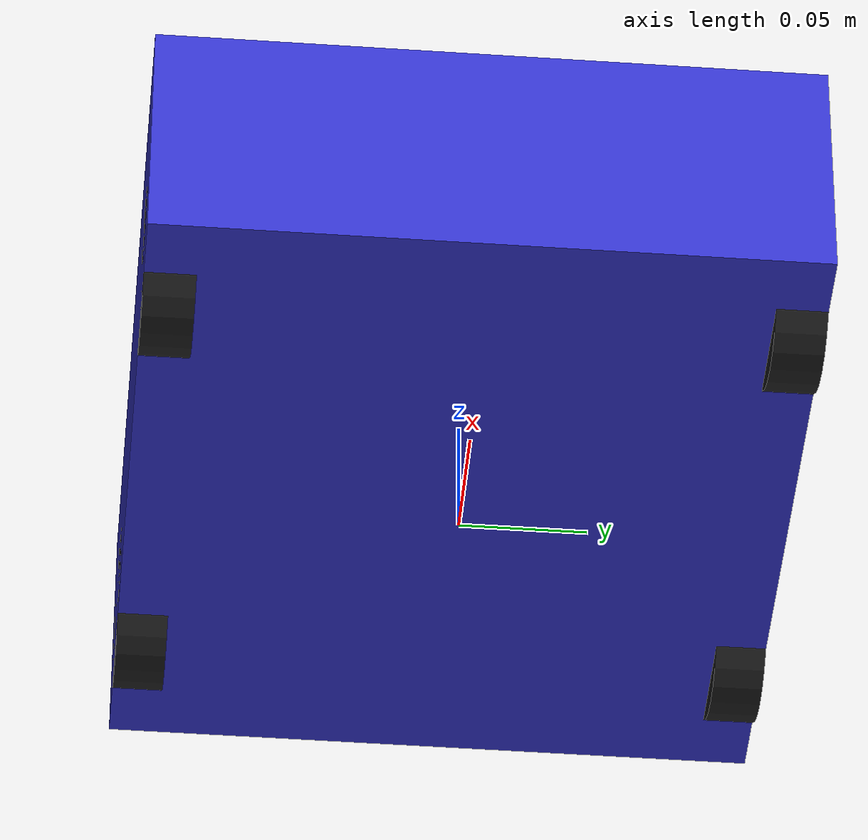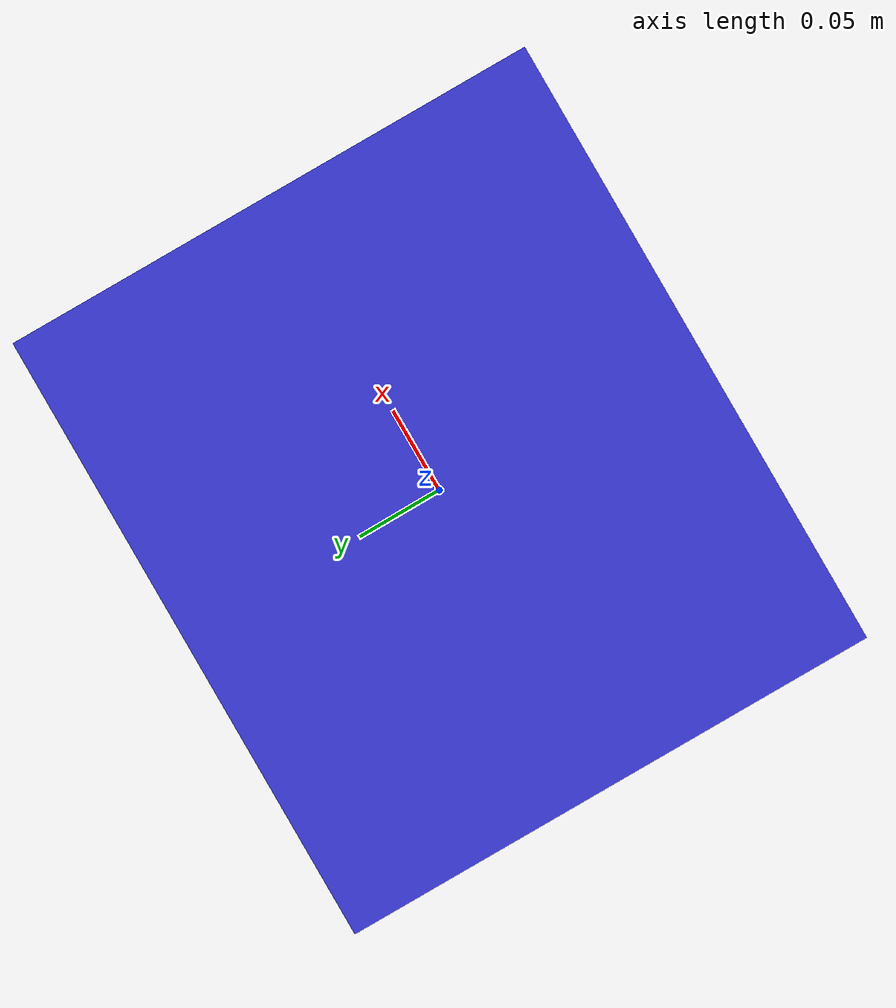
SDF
<?xml version="1.0"?>
<sdf version="1.9">
  <model name="rover">
    <link name="base_link">
      <pose>0 0 0.06 0 0 0</pose>
      <inertial>
        <mass>2.0</mass>
        <inertia><ixx>0.013</ixx><iyy>0.017</iyy><izz>0.026</izz>
                 <ixy>0</ixy><ixz>0</ixz><iyz>0</iyz></inertia>
      </inertial>
      <collision name="chassis_col">
        <geometry><box><size>0.30 0.26 0.10</size></box></geometry>
      </collision>
      <visual name="chassis_vis">
        <geometry><box><size>0.30 0.26 0.10</size></box></geometry>
        <material><ambient>0.2 0.2 0.8 1</ambient><diffuse>0.2 0.2 0.8 1</diffuse></material>
      </visual>

      <sensor name="infra1" type="camera">
        <!-- infra1 viewpoint: run_robot_tf.sh mount offset relative to base
             center (base_link is 0.06 above ground; camera at z 0.25) -->
        <pose>0.10 0 0.19 0 0 0</pose>
        <topic>/rover_sim/infra1/image</topic>
        <gz_frame_id>camera0_infra1_optical_frame</gz_frame_id>
        <update_rate>15</update_rate>
        <camera>
          <camera_info_topic>/rover_sim/infra1/camera_info</camera_info_topic>
          <!-- hfov = 2*atan(896 / (2*448.284)) from captured infra1 fx -->
          <horizontal_fov>1.5702</horizontal_fov>
          <image><width>896</width><height>504</height><format>L8</format></image>
          <clip><near>0.15</near><far>12.0</far></clip>
        </camera>
      </sensor>

      <sensor name="depth" type="depth_camera">
        <!-- same viewpoint as infra1, like the real depth engine -->
        <pose>0.10 0 0.19 0 0 0</pose>
        <topic>/rover_sim/depth/image</topic>
        <gz_frame_id>camera0_depth_optical_frame</gz_frame_id>
        <update_rate>15</update_rate>
        <camera>
          <camera_info_topic>/rover_sim/depth/camera_info</camera_info_topic>
          <horizontal_fov>1.5702</horizontal_fov>
          <image><width>896</width><height>504</height><format>R_FLOAT32</format></image>
          <clip><near>0.30</near><far>9.0</far></clip>
          <!-- real depth is noisy with the IR emitter off — do not simulate
               a perfect sensor -->
          <noise><type>gaussian</type><mean>0.0</mean><stddev>0.007</stddev></noise>
        </camera>
      </sensor>

      <sensor name="color" type="camera">
        <!-- color extrinsic: y -0.059 from camera0_link (captured tf_static) -->
        <pose>0.10 -0.059 0.19 0 0 0</pose>
        <topic>/rover_sim/color/image</topic>
        <gz_frame_id>camera0_color_optical_frame</gz_frame_id>
        <update_rate>15</update_rate>
        <camera>
          <camera_info_topic>/rover_sim/color/camera_info</camera_info_topic>
          <!-- hfov = 2*atan(896 / (2*450.262)) from captured color fx -->
          <horizontal_fov>1.5658</horizontal_fov>
          <image><width>896</width><height>504</height><format>R8G8B8</format></image>
          <clip><near>0.15</near><far>12.0</far></clip>
        </camera>
      </sensor>

      <sensor name="imu" type="imu">
        <!-- camera0_motion_frame == camera0_link (captured tf_static) -->
        <pose>0.10 0 0.19 0 0 0</pose>
        <topic>/rover_sim/imu</topic>
        <update_rate>200</update_rate>
      </sensor>
    </link>

    <link name="front_left_wheel">
      <pose>0.10 0.12 0.0325 -1.5707963 0 0</pose>
      <inertial>
        <mass>0.05</mass>
        <inertia><ixx>2e-5</ixx><iyy>2e-5</iyy><izz>3e-5</izz>
                 <ixy>0</ixy><ixz>0</ixz><iyz>0</iyz></inertia>
      </inertial>
      <collision name="col">
        <geometry><cylinder><radius>0.0325</radius><length>0.02</length></cylinder></geometry>
        <surface><friction><ode><mu>1.0</mu><mu2>1.0</mu2></ode></friction></surface>
      </collision>
      <visual name="vis">
        <geometry><cylinder><radius>0.0325</radius><length>0.02</length></cylinder></geometry>
        <material><ambient>0.1 0.1 0.1 1</ambient><diffuse>0.1 0.1 0.1 1</diffuse></material>
      </visual>
    </link>

    <link name="front_right_wheel">
      <pose>0.10 -0.12 0.0325 -1.5707963 0 0</pose>
      <inertial>
        <mass>0.05</mass>
        <inertia><ixx>2e-5</ixx><iyy>2e-5</iyy><izz>3e-5</izz>
                 <ixy>0</ixy><ixz>0</ixz><iyz>0</iyz></inertia>
      </inertial>
      <collision name="col">
        <geometry><cylinder><radius>0.0325</radius><length>0.02</length></cylinder></geometry>
        <surface><friction><ode><mu>1.0</mu><mu2>1.0</mu2></ode></friction></surface>
      </collision>
      <visual name="vis">
        <geometry><cylinder><radius>0.0325</radius><length>0.02</length></cylinder></geometry>
        <material><ambient>0.1 0.1 0.1 1</ambient><diffuse>0.1 0.1 0.1 1</diffuse></material>
      </visual>
    </link>

    <link name="rear_left_wheel">
      <pose>-0.10 0.12 0.0325 -1.5707963 0 0</pose>
      <inertial>
        <mass>0.05</mass>
        <inertia><ixx>2e-5</ixx><iyy>2e-5</iyy><izz>3e-5</izz>
                 <ixy>0</ixy><ixz>0</ixz><iyz>0</iyz></inertia>
      </inertial>
      <collision name="col">
        <geometry><cylinder><radius>0.0325</radius><length>0.02</length></cylinder></geometry>
        <surface><friction><ode><mu>1.0</mu><mu2>1.0</mu2></ode></friction></surface>
      </collision>
      <visual name="vis">
        <geometry><cylinder><radius>0.0325</radius><length>0.02</length></cylinder></geometry>
        <material><ambient>0.1 0.1 0.1 1</ambient><diffuse>0.1 0.1 0.1 1</diffuse></material>
      </visual>
    </link>

    <link name="rear_right_wheel">
      <pose>-0.10 -0.12 0.0325 -1.5707963 0 0</pose>
      <inertial>
        <mass>0.05</mass>
        <inertia><ixx>2e-5</ixx><iyy>2e-5</iyy><izz>3e-5</izz>
                 <ixy>0</ixy><ixz>0</ixz><iyz>0</iyz></inertia>
      </inertial>
      <collision name="col">
        <geometry><cylinder><radius>0.0325</radius><length>0.02</length></cylinder></geometry>
        <surface><friction><ode><mu>1.0</mu><mu2>1.0</mu2></ode></friction></surface>
      </collision>
      <visual name="vis">
        <geometry><cylinder><radius>0.0325</radius><length>0.02</length></cylinder></geometry>
        <material><ambient>0.1 0.1 0.1 1</ambient><diffuse>0.1 0.1 0.1 1</diffuse></material>
      </visual>
    </link>

    <joint name="front_left_wheel_joint" type="revolute">
      <parent>base_link</parent><child>front_left_wheel</child>
      <axis><xyz>0 0 1</xyz><limit><lower>-1e16</lower><upper>1e16</upper></limit></axis>
    </joint>
    <joint name="front_right_wheel_joint" type="revolute">
      <parent>base_link</parent><child>front_right_wheel</child>
      <axis><xyz>0 0 1</xyz><limit><lower>-1e16</lower><upper>1e16</upper></limit></axis>
    </joint>
    <joint name="rear_left_wheel_joint" type="revolute">
      <parent>base_link</parent><child>rear_left_wheel</child>
      <axis><xyz>0 0 1</xyz><limit><lower>-1e16</lower><upper>1e16</upper></limit></axis>
    </joint>
    <joint name="rear_right_wheel_joint" type="revolute">
      <parent>base_link</parent><child>rear_right_wheel</child>
      <axis><xyz>0 0 1</xyz><limit><lower>-1e16</lower><upper>1e16</upper></limit></axis>
    </joint>

    <plugin filename="gz-sim-diff-drive-system" name="gz::sim::systems::DiffDrive">
      <left_joint>front_left_wheel_joint</left_joint>
      <left_joint>rear_left_wheel_joint</left_joint>
      <right_joint>front_right_wheel_joint</right_joint>
      <right_joint>rear_right_wheel_joint</right_joint>
      <wheel_separation>0.24</wheel_separation>
      <wheel_radius>0.0325</wheel_radius>
      <!-- driven ONLY by contract_bridge.py after firmware emulation
           (deadband + watchdog) — never bridge /cmd_vel here directly -->
      <topic>/rover_sim/drive_cmd</topic>
      <odom_publish_frequency>1</odom_publish_frequency>
    </plugin>
  </model>
</sdf>
